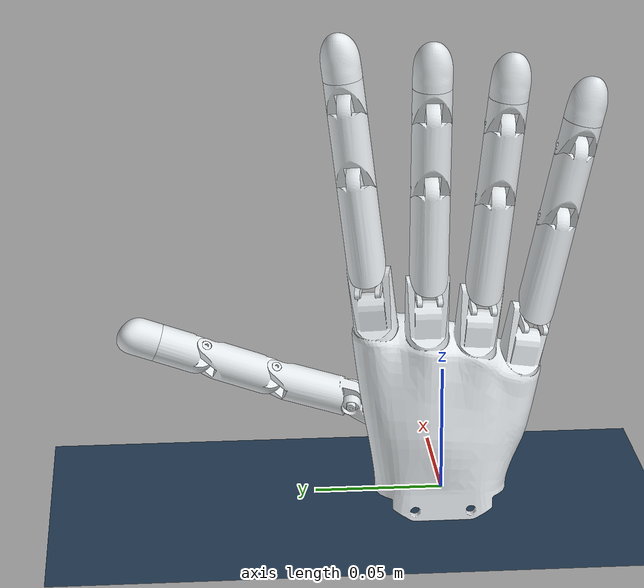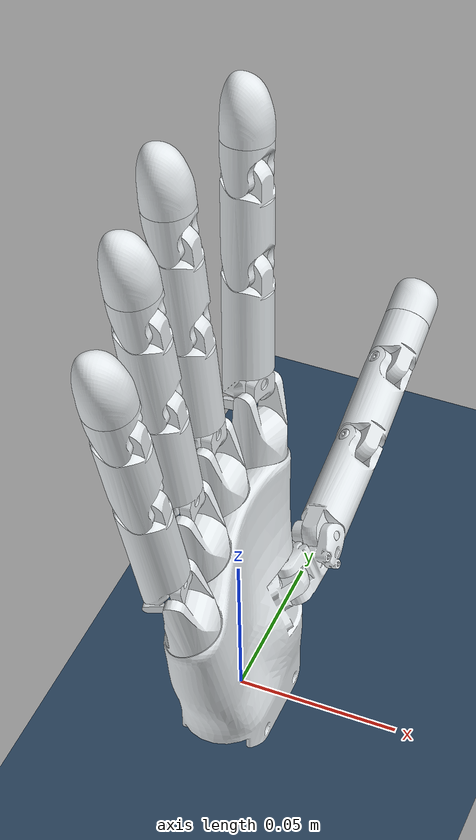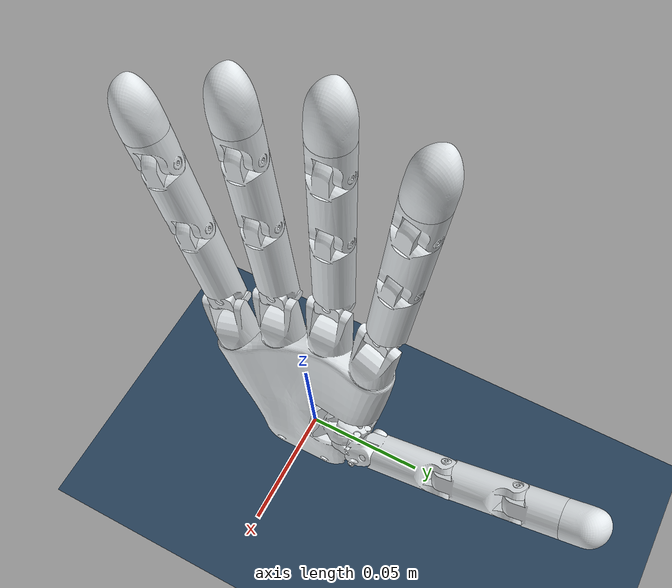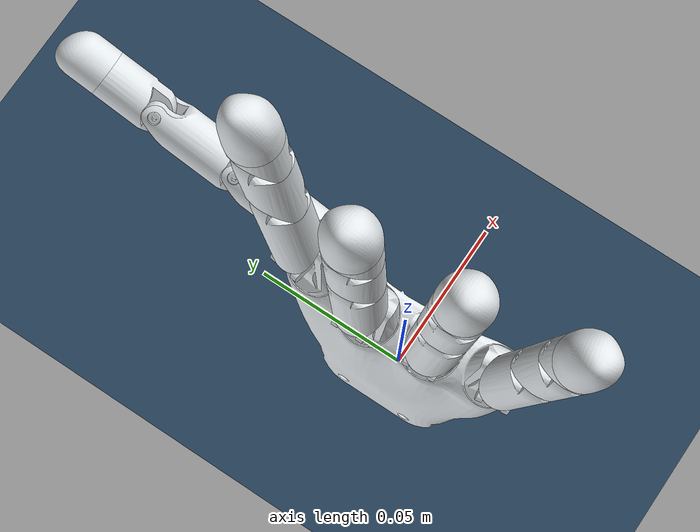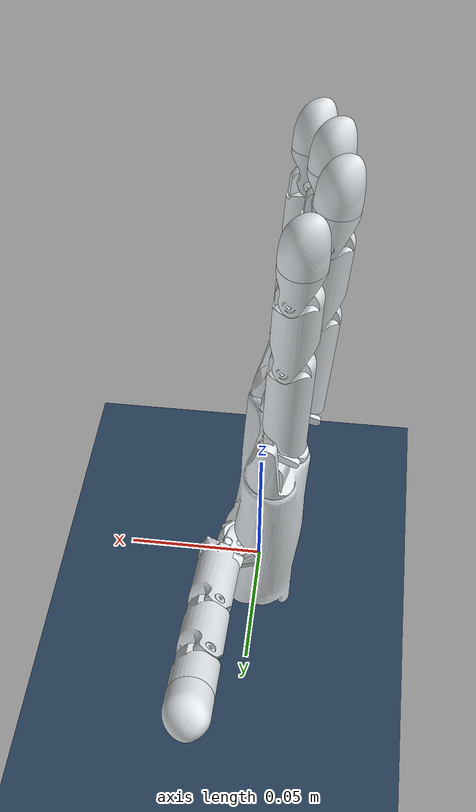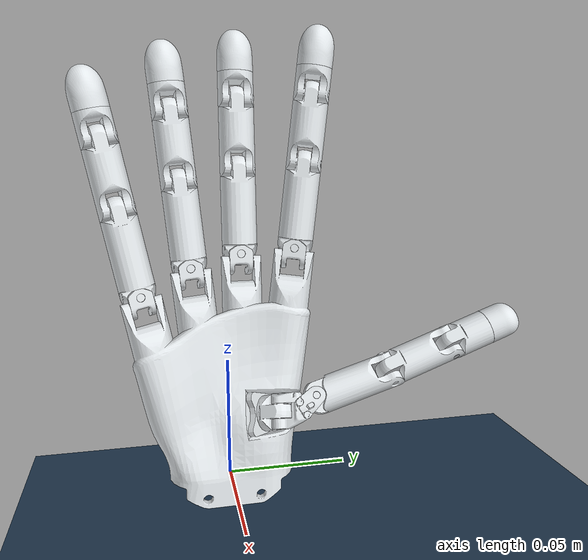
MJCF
<mujoco model="wujihand-right-v1.0.0">

  <!-- ======= COMPILER SETTINGS ======= -->
  <compiler angle="radian"
           meshdir="meshes/right/"
           boundmass="0.001"
           boundinertia="1e-6"
           balanceinertia="true"
           autolimits="true"/>

  <!-- ======= SIMULATION OPTIONS ======= -->
  <option jacobian="sparse"
          integrator="RK4"
          timestep="0.002"
          solver="Newton"
          iterations="50"
          tolerance="1e-10"
          impratio="10"/>

  <!-- ======= VISUAL SETTINGS ======= -->
  <visual>
    <global fovy="45" linewidth="1" glow="0.02" offwidth="640" offheight="480"/>
    <quality shadowsize="2048" offsamples="4"/>
    <map force="0.1" znear="0.01"/>
    <headlight ambient="0.4 0.4 0.4" diffuse="0.5 0.5 0.5" specular="0.1 0.1 0.1"/>
  </visual>

  <!-- ======= MATERIALS & TEXTURES ======= -->
  <asset>
    <!-- Sky background -->
    <texture type="skybox" builtin="gradient"
             rgb1="0.3 0.5 0.7" rgb2="0 0 0"
             width="512" height="3072"/>
    <!-- Ground plane texture -->
    <texture name="texplane" type="2d" builtin="checker"
             rgb1="0.2 0.3 0.4" rgb2="0.1 0.2 0.3"
             markrgb="0.8 0.8 0.8" width="300" height="300"/>
    <material name="groundplane" texture="texplane"
              texuniform="true" texrepeat="5 5" reflectance="0.2"/>
    <!-- Palm Components -->
    <mesh name="palm_mask"            content_type="model/stl" file="palm_mask.STL"/>
    <mesh name="palm_link"            content_type="model/stl" file="palm_link.STL"/>

    <!-- Finger 1 (Index) Components -->
    <mesh name="finger1_link1"        content_type="model/stl" file="finger1_link1.STL"/>
    <mesh name="finger1_link2"        content_type="model/stl" file="finger1_link2.STL"/>
    <mesh name="finger1_link3"        content_type="model/stl" file="finger1_link3.STL"/>
    <mesh name="finger1_link4"        content_type="model/stl" file="finger1_link4.STL"/>
    <mesh name="finger1_tip_link"     content_type="model/stl" file="finger1_tip_link.STL"/>

    <!-- Finger 2 Components -->
    <mesh name="finger2_link1"        content_type="model/stl" file="finger2_link1.STL"/>
    <mesh name="finger2_link2"        content_type="model/stl" file="finger2_link2.STL"/>
    <mesh name="finger2_link3"        content_type="model/stl" file="finger2_link3.STL"/>
    <mesh name="finger2_link4"        content_type="model/stl" file="finger2_link4.STL"/>
    <mesh name="finger2_tip_link"     content_type="model/stl" file="finger2_tip_link.STL"/>

    <!-- Finger 3 (Middle) Components -->
    <mesh name="finger3_link1"        content_type="model/stl" file="finger3_link1.STL"/>
    <mesh name="finger3_link2"        content_type="model/stl" file="finger3_link2.STL"/>
    <mesh name="finger3_link3"        content_type="model/stl" file="finger3_link3.STL"/>
    <mesh name="finger3_link4"        content_type="model/stl" file="finger3_link4.STL"/>
    <mesh name="finger3_tip_link"     content_type="model/stl" file="finger3_tip_link.STL"/>

    <!-- Finger 4 Components -->
    <mesh name="finger4_link1"        content_type="model/stl" file="finger4_link1.STL"/>
    <mesh name="finger4_link2"        content_type="model/stl" file="finger4_link2.STL"/>
    <mesh name="finger4_link3"        content_type="model/stl" file="finger4_link3.STL"/>
    <mesh name="finger4_link4"        content_type="model/stl" file="finger4_link4.STL"/>
    <mesh name="finger4_tip_link"     content_type="model/stl" file="finger4_tip_link.STL"/>

    <!-- Finger 5 (Pinky) Components -->
    <mesh name="finger5_link1"        content_type="model/stl" file="finger5_link1.STL"/>
    <mesh name="finger5_link2"        content_type="model/stl" file="finger5_link2.STL"/>
    <mesh name="finger5_link3"        content_type="model/stl" file="finger5_link3.STL"/>
    <mesh name="finger5_link4"        content_type="model/stl" file="finger5_link4.STL"/>
    <mesh name="finger5_tip_link"     content_type="model/stl" file="finger5_tip_link.STL"/>
  </asset>

  <!-- ======= WORLD BODY (KINEMATIC STRUCTURE) ======= -->
  <worldbody>
    <!-- Ground Plane (lowered to accommodate hand) -->
    <geom name="floor" pos="0 0 -0.01" size="0 0 0.05" type="plane"
          material="groundplane"/>

    <!-- Hand positioned at origin for easier control -->
    <body name="hand_base" pos="0 0 0">
      <!-- Palm Base (Fixed) -->
      <!-- Visual geometry (group 0 - default visible) -->
      <geom type="mesh" contype="0" conaffinity="0" group="0" density="0"
            rgba="0.898039 0.917647 0.929412 1" mesh="palm_mask"/>
      <!-- Collision geometry (group 3 - semi-transparent) -->
      <geom type="mesh" group="3"
            rgba="0.898039 0.917647 0.929412 0.3" mesh="palm_link"/>
    <body name="finger1_link1" pos="0.00852444 0.0205754 0.0287119" quat="0.682211 -0.617678 0.0805082 -0.382859">
      <inertial pos="-0.0024668 -0.00144172 0.007776" quat="0.975278 0.00313694 0.000441004 -0.220957" mass="0.0075" diaginertia="3.32482e-07 2.8745e-07 2.32278e-07"/>
      <joint name="finger1_joint1" pos="0 0 0" axis="0 1 0" range="-0.0448 1.6508"
             actuatorfrcrange="-0.6 0.6" damping="0.05" armature="0.0002"/>
      <geom type="mesh" contype="0" conaffinity="0" group="0" density="0"
            rgba="0.898039 0.917647 0.929412 1" mesh="finger1_link1"/>
      <geom type="mesh" group="3" rgba="0.898039 0.917647 0.929412 0.3" mesh="finger1_link1"/>
      <body name="finger1_link2" pos="-0.0047549 -0.00601914 0.0141321" quat="0.616957 -0.0855876 -0.29085 0.726254">
        <inertial pos="0.00116856 -1.30515e-05 0.0149181" quat="0.796859 0.00227226 -0.00459591 0.604143" mass="0.0248" diaginertia="2.62993e-06 2.55761e-06 6.79513e-07"/>
        <joint name="finger1_joint2" pos="0 0 0" axis="0 -1 0" range="-0.1659 0.9339"
               actuatorfrcrange="-0.6 0.6" damping="0.05" armature="0.0002"/>
        <geom type="mesh" contype="0" conaffinity="0" group="0" density="0"
              rgba="0.898039 0.917647 0.929412 1" mesh="finger1_link2"/>
        <geom type="mesh" group="3" rgba="0.898039 0.917647 0.929412 0.3" mesh="finger1_link2"/>
        <body name="finger1_link3" pos="0.00026671 -0.000991502 0.0331656" quat="0.577836 0.0212382 -0.0150036 -0.815739">
          <inertial pos="-0.00112498 0.000183915 0.0128078" quat="0.999935 -0.000691698 0.0113547 0.000787943" mass="0.0165" diaginertia="1.42231e-06 1.38859e-06 4.49191e-07"/>
          <joint name="finger1_joint3" pos="0 0 0" axis="0 1 0" range="-0.4932 1.6272"
                 actuatorfrcrange="-0.3 0.3" damping="0.03" armature="0.0001"/>
          <geom type="mesh" contype="0" conaffinity="0" group="0" density="0"
                rgba="0.898039 0.917647 0.929412 1" mesh="finger1_link3"/>
          <geom type="mesh" group="3" rgba="0.898039 0.917647 0.929412 0.3" mesh="finger1_link3"/>
          <body name="finger1_link4" pos="0 -5.00007e-05 0.029">
            <inertial pos="-0.00276856 0.000440255 0.0116513" quat="0.69461 -0.1277 -0.125682 0.696716" mass="0.0205" diaginertia="1.85112e-06 1.7656e-06 6.02077e-07"/>
            <joint name="finger1_joint4" pos="0 0 0" axis="0 1 0" range="-0.4932 1.6272"
                   actuatorfrcrange="-0.3 0.3" damping="0.03" armature="0.0001"/>
            <geom type="mesh" contype="0" conaffinity="0" group="0" density="0"
                  rgba="0.898039 0.917647 0.929412 1" mesh="finger1_link4"/>
            <geom type="mesh" group="3" rgba="0.898039 0.917647 0.929412 0.3" mesh="finger1_link4"/>
            <geom pos="-0.00104624 0.000443681 0.0293" type="mesh"
                  contype="0" conaffinity="0" group="0" density="0"
                  rgba="0.898039 0.917647 0.929412 1" mesh="finger1_tip_link"/>
            <geom pos="-0.00104624 0.000443681 0.0293" type="mesh" group="3"
                  rgba="0.898039 0.917647 0.929412 0.3" mesh="finger1_tip_link"/>
          </body>
        </body>
      </body>
    </body>
    <body name="finger2_link1" pos="-0.00587009 0.0294339 0.0919165" quat="0.991676 -0.059044 -0.0292515 -0.110623">
      <inertial pos="-0.00132915 -1.71487e-07 0.000319873" quat="0.706764 0.70713 0.015368 -0.014658" mass="0.0032" diaginertia="8.24739e-08 7.65454e-08 7.17523e-08"/>
      <joint name="finger2_joint1" pos="0 0 0" axis="0 1 0.000433225" range="-0.32695 1.63595"
             actuatorfrcrange="-1 1" damping="0.05" armature="0.0002"/>
      <geom type="mesh" contype="0" conaffinity="0" group="0" density="0"
            rgba="0.898039 0.917647 0.929412 1" mesh="finger2_link1"/>
      <geom type="mesh" group="3" rgba="0.898039 0.917647 0.929412 0.3" mesh="finger2_link1"/>
      <body name="finger2_link2" pos="0.0022 0 0.00400001" quat="1 0.000216612 0 0">
        <inertial pos="-0.00607489 7.04149e-06 0.0174058" quat="0.705734 1.23402e-05 0.000277902 0.708477" mass="0.033" diaginertia="4.76601e-06 4.73968e-06 8.7595e-07"/>
        <joint name="finger2_joint2" pos="0 0 0" axis="-1 0 0" range="-0.495 0.495"
               actuatorfrcrange="-0.2 0.2" damping="0.05" armature="0.0002"/>
        <geom type="mesh" contype="0" conaffinity="0" group="0" density="0"
              rgba="0.898039 0.917647 0.929412 1" mesh="finger2_link2"/>
        <geom type="mesh" group="3" rgba="0.898039 0.917647 0.929412 0.3" mesh="finger2_link2"/>
        <body name="finger2_link3" pos="-0.00460024 1.55818e-05 0.0366177" quat="1 -0.000216611 2.90923e-08 -0.000134306">
          <inertial pos="-0.00112283 4.42929e-06 0.0155095" quat="0.999849 0.000641507 -0.0173326 0.000397518" mass="0.0165" diaginertia="1.45438e-06 1.41955e-06 4.48835e-07"/>
          <joint name="finger2_joint3" pos="0 0 0" axis="0 1 0" range="-0.4932 1.6272"
                 actuatorfrcrange="-0.3 0.3" damping="0.03" armature="0.0001"/>
          <geom type="mesh" contype="0" conaffinity="0" group="0" density="0"
                rgba="0.898039 0.917647 0.929412 1" mesh="finger2_link3"/>
          <geom type="mesh" group="3" rgba="0.898039 0.917647 0.929412 0.3" mesh="finger2_link3"/>
          <body name="finger2_link4" pos="0 0 0.029">
            <inertial pos="-0.00181787 1.92236e-05 0.00809078" quat="0.989407 0.000197691 -0.145163 0.00119037" mass="0.018" diaginertia="1.16737e-06 1.01622e-06 5.10877e-07"/>
            <joint name="finger2_joint4" pos="0 0 0" axis="0 1 0" range="-0.4932 1.6272"
                   actuatorfrcrange="-0.3 0.3" damping="0.03" armature="0.0001"/>
            <geom type="mesh" contype="0" conaffinity="0" group="0" density="0"
                  rgba="0.898039 0.917647 0.929412 1" mesh="finger2_link4"/>
            <geom type="mesh" group="3" rgba="0.898039 0.917647 0.929412 0.3" mesh="finger2_link4"/>
            <geom pos="-0.00105 0 0.0274" type="mesh"
                  contype="0" conaffinity="0" group="0" density="0"
                  rgba="0.898039 0.917647 0.929412 1" mesh="finger2_tip_link"/>
            <geom pos="-0.00105 0 0.0274" type="mesh" group="3"
                  rgba="0.898039 0.917647 0.929412 0.3" mesh="finger2_tip_link"/>
          </body>
        </body>
      </body>
    </body>
    <body name="finger3_link1" pos="-0.0104597 0.00746146 0.0895435" quat="0.999048 -0.000229091 -0.0436195 0.0002811">
      <inertial pos="-0.00132914 -1.35106e-07 0.000319937" quat="0.706747 0.707148 0.0153606 -0.0146668" mass="0.0032" diaginertia="8.24744e-08 7.6546e-08 7.1753e-08"/>
      <joint name="finger3_joint1" pos="0 0 0" axis="0 1 0.000433225" range="-0.32695 1.63595"
             actuatorfrcrange="-1 1" damping="0.05" armature="0.0002"/>
      <geom type="mesh" contype="0" conaffinity="0" group="0" density="0"
            rgba="0.898039 0.917647 0.929412 1" mesh="finger3_link1"/>
      <geom type="mesh" group="3" rgba="0.898039 0.917647 0.929412 0.3" mesh="finger3_link1"/>
      <body name="finger3_link2" pos="0.0022 0 0.00400001" quat="1 0.000216612 0 0">
        <inertial pos="-0.00607477 7.04803e-06 0.0174059" quat="0.70578 1.27909e-05 0.000277487 0.708431" mass="0.033" diaginertia="4.76601e-06 4.73968e-06 8.75951e-07"/>
        <joint name="finger3_joint2" pos="0 0 0" axis="-1 0 0" range="-0.495 0.495"
               actuatorfrcrange="-0.2 0.2" damping="0.05" armature="0.0002"/>
        <geom type="mesh" contype="0" conaffinity="0" group="0" density="0"
              rgba="0.898039 0.917647 0.929412 1" mesh="finger3_link2"/>
        <geom type="mesh" group="3" rgba="0.898039 0.917647 0.929412 0.3" mesh="finger3_link2"/>
        <body name="finger3_link3" pos="-0.0046 1.55818e-05 0.0366177" quat="1 -0.000216612 2.90924e-08 -0.000134306">
          <inertial pos="-0.00112283 4.3968e-06 0.0155095" quat="0.99985 0.000640582 -0.0173313 0.00043494" mass="0.0165" diaginertia="1.45438e-06 1.41955e-06 4.48835e-07"/>
          <joint name="finger3_joint3" pos="0 0 0" axis="0 1 0" range="-0.4932 1.6272"
                 actuatorfrcrange="-0.3 0.3" damping="0.03" armature="0.0001"/>
          <geom type="mesh" contype="0" conaffinity="0" group="0" density="0"
                rgba="0.898039 0.917647 0.929412 1" mesh="finger3_link3"/>
          <geom type="mesh" group="3" rgba="0.898039 0.917647 0.929412 0.3" mesh="finger3_link3"/>
          <body name="finger3_link4" pos="0 0 0.029">
            <inertial pos="-0.00179421 1.91338e-05 0.00809257" quat="0.989871 0.000227372 -0.141963 0.00116498" mass="0.018" diaginertia="1.16555e-06 1.01412e-06 5.10598e-07"/>
            <joint name="finger3_joint4" pos="0 0 0" axis="0 1 0" range="-0.4932 1.6272"
                   actuatorfrcrange="-0.3 0.3" damping="0.03" armature="0.0001"/>
            <geom type="mesh" contype="0" conaffinity="0" group="0" density="0"
                  rgba="0.898039 0.917647 0.929412 1" mesh="finger3_link4"/>
            <geom type="mesh" group="3" rgba="0.898039 0.917647 0.929412 0.3" mesh="finger3_link4"/>
            <geom pos="-0.00104043 0 0.0267" type="mesh"
                  contype="0" conaffinity="0" group="0" density="0"
                  rgba="0.898039 0.917647 0.929412 1" mesh="finger3_tip_link"/>
            <geom pos="-0.00104043 0 0.0267" type="mesh" group="3"
                  rgba="0.898039 0.917647 0.929412 0.3" mesh="finger3_tip_link"/>
          </body>
        </body>
      </body>
    </body>
    <body name="finger4_link1" pos="-0.00766486 -0.0137122 0.0844287" quat="0.997799 0.0458856 -0.0405936 0.0253912">
      <inertial pos="-0.00132914 -1.28562e-07 0.000319948" quat="0.706753 0.707142 0.0153606 -0.0146673" mass="0.0032" diaginertia="8.24745e-08 7.65462e-08 7.17532e-08"/>
      <joint name="finger4_joint1" pos="0 0 0" axis="0 1 0.000433225" range="-0.32695 1.63595"
             actuatorfrcrange="-1 1" damping="0.05" armature="0.0002"/>
      <geom type="mesh" contype="0" conaffinity="0" group="0" density="0"
            rgba="0.898039 0.917647 0.929412 1" mesh="finger4_link1"/>
      <geom type="mesh" group="3" rgba="0.898039 0.917647 0.929412 0.3" mesh="finger4_link1"/>
      <body name="finger4_link2" pos="0.0022 0 0.00400001" quat="1 0.000216613 0 0">
        <inertial pos="-0.00607477 7.04801e-06 0.0174059" quat="0.70578 1.27746e-05 0.000277503 0.708431" mass="0.033" diaginertia="4.76601e-06 4.73968e-06 8.75951e-07"/>
        <joint name="finger4_joint2" pos="0 0 0" axis="-1 0 0" range="-0.495 0.495"
               actuatorfrcrange="-0.2 0.2" damping="0.05" armature="0.0002"/>
        <geom type="mesh" contype="0" conaffinity="0" group="0" density="0"
              rgba="0.898039 0.917647 0.929412 1" mesh="finger4_link2"/>
        <geom type="mesh" group="3" rgba="0.898039 0.917647 0.929412 0.3" mesh="finger4_link2"/>
        <body name="finger4_link3" pos="-0.0046 1.55818e-05 0.0366177" quat="1 -0.000216613 2.90925e-08 -0.000134306">
          <inertial pos="-0.00112282 4.41535e-06 0.0155095" quat="0.999849 0.000641011 -0.0173322 0.000407227" mass="0.0165" diaginertia="1.45438e-06 1.41955e-06 4.48835e-07"/>
          <joint name="finger4_joint3" pos="0 0 0" axis="0 1 0" range="-0.4932 1.6272"
                 actuatorfrcrange="-0.3 0.3" damping="0.03" armature="0.0001"/>
          <geom type="mesh" contype="0" conaffinity="0" group="0" density="0"
                rgba="0.898039 0.917647 0.929412 1" mesh="finger4_link3"/>
          <geom type="mesh" group="3" rgba="0.898039 0.917647 0.929412 0.3" mesh="finger4_link3"/>
          <body name="finger4_link4" pos="0 0 0.029">
            <inertial pos="-0.0017939 1.92189e-05 0.00809272" quat="0.989879 0.000215034 -0.141912 0.00116015" mass="0.018" diaginertia="1.16559e-06 1.01415e-06 5.1059e-07"/>
            <joint name="finger4_joint4" pos="0 0 0" axis="0 1 0" range="-0.4932 1.6272"
                   actuatorfrcrange="-0.3 0.3" damping="0.03" armature="0.0001"/>
            <geom type="mesh" contype="0" conaffinity="0" group="0" density="0"
                  rgba="0.898039 0.917647 0.929412 1" mesh="finger4_link4"/>
            <geom type="mesh" group="3" rgba="0.898039 0.917647 0.929412 0.3" mesh="finger4_link4"/>
            <geom pos="-0.00104043 0 0.0267" type="mesh"
                  contype="0" conaffinity="0" group="0" density="0"
                  rgba="0.898039 0.917647 0.929412 1" mesh="finger4_tip_link"/>
            <geom pos="-0.00104043 0 0.0267" type="mesh" group="3"
                  rgba="0.898039 0.917647 0.929412 0.3" mesh="finger4_tip_link"/>
          </body>
        </body>
      </body>
    </body>
    <body name="finger5_link1" pos="-0.00226865 -0.0340011 0.0742813" quat="0.990891 0.0991027 -0.0383434 0.0827279">
      <inertial pos="-0.00132914 -1.21384e-07 0.000319969" quat="0.706764 0.70713 0.0153613 -0.0146677" mass="0.0032" diaginertia="8.24747e-08 7.65466e-08 7.17534e-08"/>
      <joint name="finger5_joint1" pos="0 0 0" axis="0 1 0.000433225" range="-0.32695 1.63595"
             actuatorfrcrange="-1 1" damping="0.05" armature="0.0002"/>
      <geom type="mesh" contype="0" conaffinity="0" group="0" density="0"
            rgba="0.898039 0.917647 0.929412 1" mesh="finger5_link1"/>
      <geom type="mesh" group="3" rgba="0.898039 0.917647 0.929412 0.3" mesh="finger5_link1"/>
      <body name="finger5_link2" pos="0.0022 0 0.004" quat="1 0.000216613 0 0">
        <inertial pos="-0.00607478 7.04817e-06 0.0174058" quat="0.70578 1.27346e-05 0.000277544 0.708431" mass="0.033" diaginertia="4.76602e-06 4.73968e-06 8.75951e-07"/>
        <joint name="finger5_joint2" pos="0 0 0" axis="-1 0 0" range="-0.495 0.495"
               actuatorfrcrange="-0.2 0.2" damping="0.05" armature="0.0002"/>
        <geom type="mesh" contype="0" conaffinity="0" group="0" density="0"
              rgba="0.898039 0.917647 0.929412 1" mesh="finger5_link2"/>
        <geom type="mesh" group="3" rgba="0.898039 0.917647 0.929412 0.3" mesh="finger5_link2"/>
        <body name="finger5_link3" pos="-0.0046 1.5582e-05 0.036618" quat="1 -0.000216615 2.90925e-08 -0.000134305">
          <inertial pos="-0.00112282 4.43579e-06 0.0155096" quat="0.999849 0.000640859 -0.0173336 0.00038251" mass="0.0165" diaginertia="1.45438e-06 1.41955e-06 4.48835e-07"/>
          <joint name="finger5_joint3" pos="0 0 0" axis="0 1 0" range="-0.4932 1.6272"
                 actuatorfrcrange="-0.3 0.3" damping="0.03" armature="0.0001"/>
          <geom type="mesh" contype="0" conaffinity="0" group="0" density="0"
                rgba="0.898039 0.917647 0.929412 1" mesh="finger5_link3"/>
          <geom type="mesh" group="3" rgba="0.898039 0.917647 0.929412 0.3" mesh="finger5_link3"/>
          <body name="finger5_link4" pos="0 0 0.029">
            <inertial pos="-0.0017943 1.90482e-05 0.00809254" quat="0.98987 0.000246885 -0.141974 0.00116527" mass="0.018" diaginertia="1.16556e-06 1.01412e-06 5.10599e-07"/>
            <joint name="finger5_joint4" pos="0 0 0" axis="0 1 0" range="-0.4932 1.6272"
                   actuatorfrcrange="-0.3 0.3" damping="0.03" armature="0.0001"/>
            <geom type="mesh" contype="0" conaffinity="0" group="0" density="0"
                  rgba="0.898039 0.917647 0.929412 1" mesh="finger5_link4"/>
            <geom type="mesh" group="3" rgba="0.898039 0.917647 0.929412 0.3" mesh="finger5_link4"/>
            <geom pos="-0.00104043 0 0.0267" type="mesh"
                  contype="0" conaffinity="0" group="0" density="0"
                  rgba="0.898039 0.917647 0.929412 1" mesh="finger5_tip_link"/>
            <geom pos="-0.00104043 0 0.0267" type="mesh" group="3"
                  rgba="0.898039 0.917647 0.929412 0.3" mesh="finger5_tip_link"/>
          </body>
        </body>
      </body>
    </body>
    </body>  <!-- Close hand_base body -->
  </worldbody>

  <!-- ======= ACTUATORS (POSITION CONTROL) ======= -->
  <actuator>
    <!-- Finger 1 (Index) Actuators -->
    <position name="finger1_joint1_actuator" joint="finger1_joint1"
              ctrlrange="-1.57 1.57" kp="2" forcerange="-3 3"/>
    <position name="finger1_joint2_actuator" joint="finger1_joint2"
              ctrlrange="-1.57 1.57" kp="2" forcerange="-3 3"/>
    <position name="finger1_joint3_actuator" joint="finger1_joint3"
              ctrlrange="-1.57 1.57" kp="1" forcerange="-1.5 1.5"/>
    <position name="finger1_joint4_actuator" joint="finger1_joint4"
              ctrlrange="-1.57 1.57" kp="0.8" forcerange="-1 1"/>

    <!-- Finger 2 Actuators -->
    <position name="finger2_joint1_actuator" joint="finger2_joint1"
              ctrlrange="-1.57 1.57" kp="2" forcerange="-3 3"/>
    <position name="finger2_joint2_actuator" joint="finger2_joint2"
              ctrlrange="-1.57 1.57" kp="2" forcerange="-3 3"/>
    <position name="finger2_joint3_actuator" joint="finger2_joint3"
              ctrlrange="-1.57 1.57" kp="1" forcerange="-1.5 1.5"/>
    <position name="finger2_joint4_actuator" joint="finger2_joint4"
              ctrlrange="-1.57 1.57" kp="0.8" forcerange="-1 1"/>

    <!-- Finger 3 (Middle) Actuators -->
    <position name="finger3_joint1_actuator" joint="finger3_joint1"
              ctrlrange="-1.57 1.57" kp="2" forcerange="-3 3"/>
    <position name="finger3_joint2_actuator" joint="finger3_joint2"
              ctrlrange="-1.57 1.57" kp="2" forcerange="-3 3"/>
    <position name="finger3_joint3_actuator" joint="finger3_joint3"
              ctrlrange="-1.57 1.57" kp="1" forcerange="-1.5 1.5"/>
    <position name="finger3_joint4_actuator" joint="finger3_joint4"
              ctrlrange="-1.57 1.57" kp="0.8" forcerange="-1 1"/>

    <!-- Finger 4 Actuators -->
    <position name="finger4_joint1_actuator" joint="finger4_joint1"
              ctrlrange="-1.57 1.57" kp="2" forcerange="-3 3"/>
    <position name="finger4_joint2_actuator" joint="finger4_joint2"
              ctrlrange="-1.57 1.57" kp="2" forcerange="-3 3"/>
    <position name="finger4_joint3_actuator" joint="finger4_joint3"
              ctrlrange="-1.57 1.57" kp="1" forcerange="-1.5 1.5"/>
    <position name="finger4_joint4_actuator" joint="finger4_joint4"
              ctrlrange="-1.57 1.57" kp="0.8" forcerange="-1 1"/>

    <!-- Finger 5 (Pinky) Actuators -->
    <position name="finger5_joint1_actuator" joint="finger5_joint1"
              ctrlrange="-1.57 1.57" kp="2" forcerange="-3 3"/>
    <position name="finger5_joint2_actuator" joint="finger5_joint2"
              ctrlrange="-1.57 1.57" kp="2" forcerange="-3 3"/>
    <position name="finger5_joint3_actuator" joint="finger5_joint3"
              ctrlrange="-1.57 1.57" kp="1" forcerange="-1.5 1.5"/>
    <position name="finger5_joint4_actuator" joint="finger5_joint4"
              ctrlrange="-1.57 1.57" kp="0.8" forcerange="-1 1"/>
  </actuator>
</mujoco>
